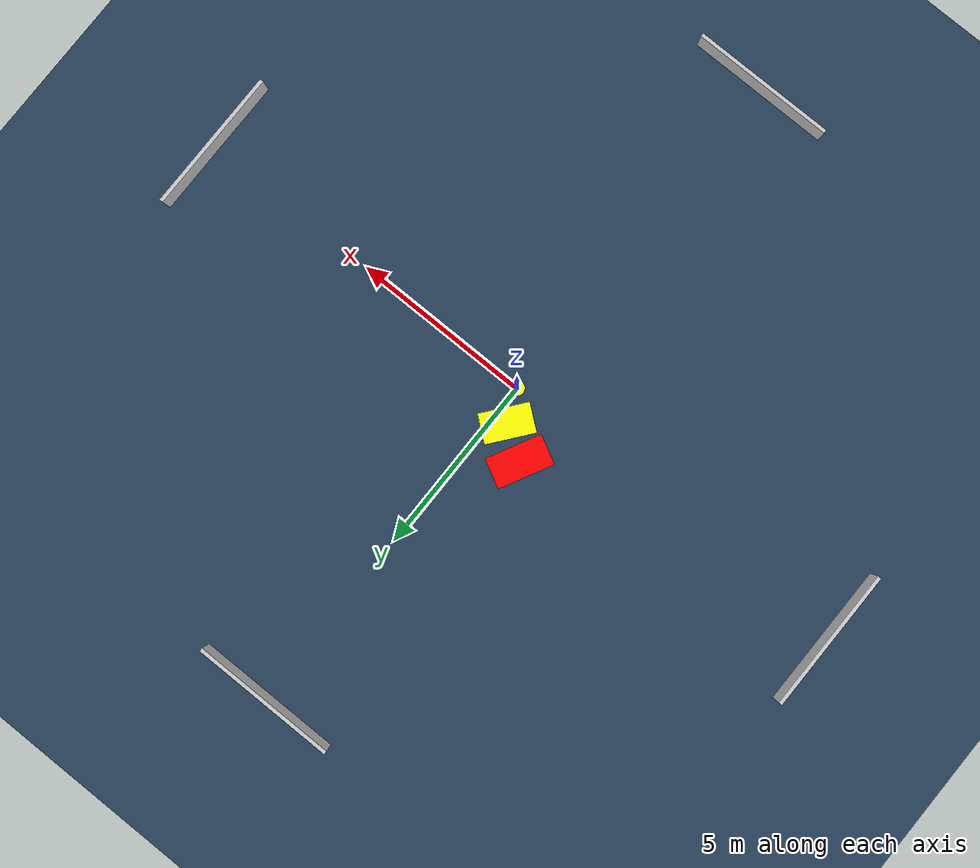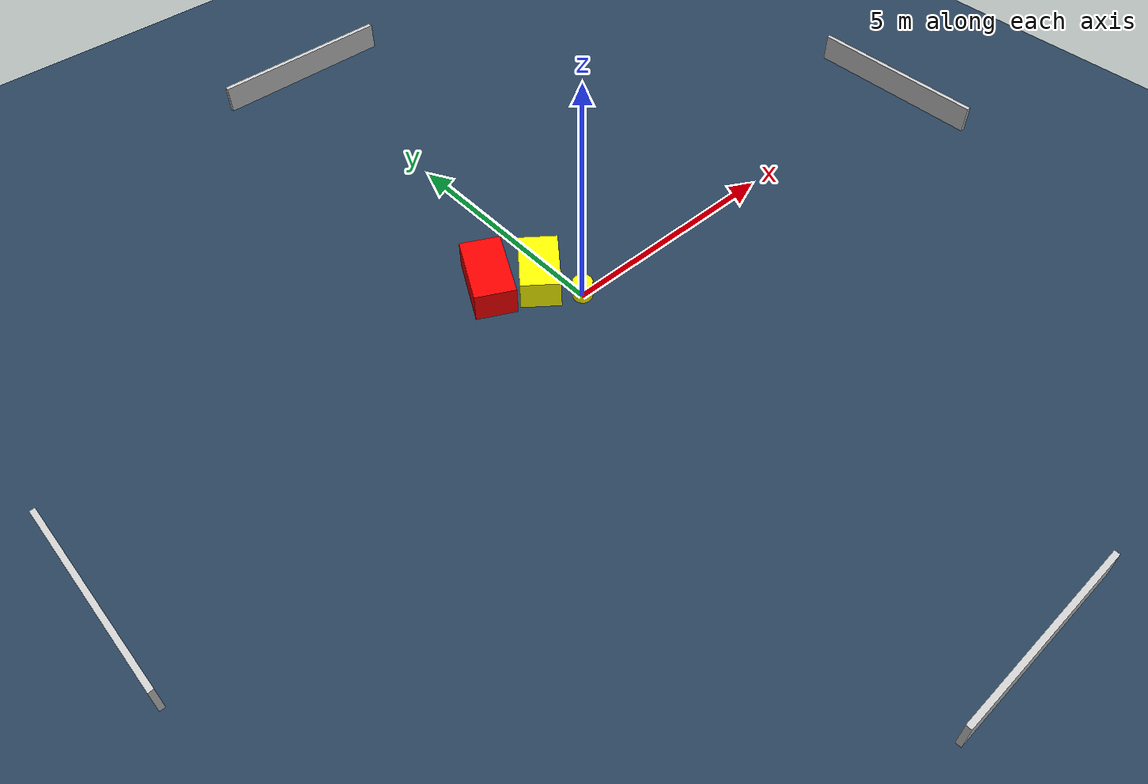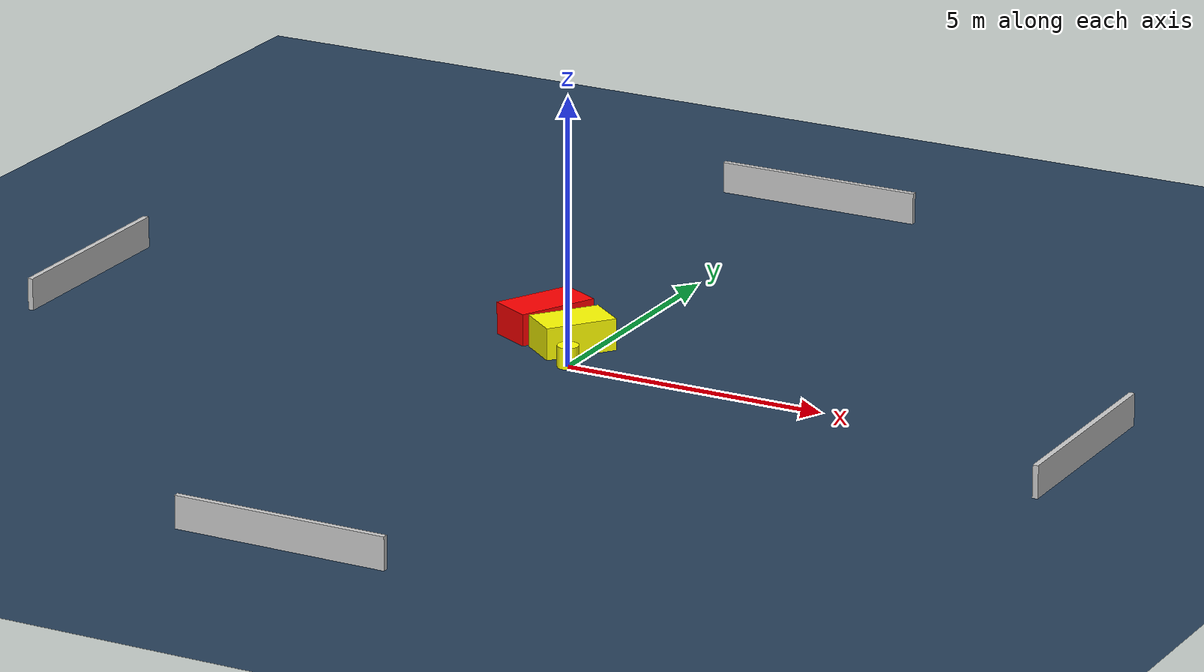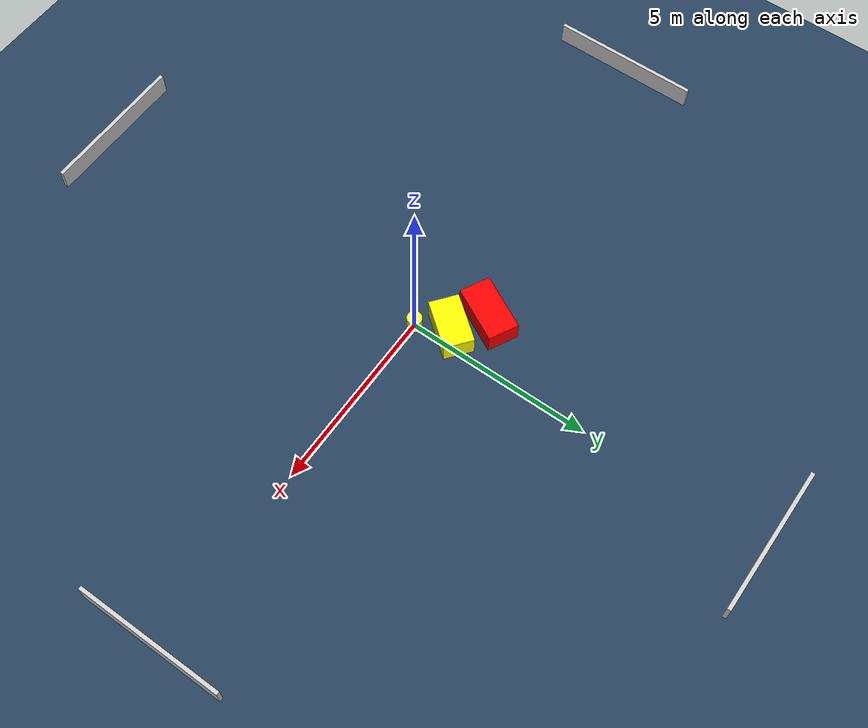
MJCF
<?xml version="1.0" ?>
<mujoco model="generated_environment">
  <option timestep="0.01" integrator="RK4" cone="elliptic"/>
  <default>
    <geom density="1"/>
  </default>
  <asset>
    <texture builtin="gradient" height="3072" name="skybox" rgb1="0.3 0.5 0.7" rgb2="0 0 0" type="skybox" width="512"/>
    <texture builtin="checker" height="300" name="groundplane" rgb1="0.2 0.3 0.4" rgb2="0.1 0.2 0.3" type="2d" width="300"/>
    <material name="groundplane" reflectance="0.2" texrepeat="5 5" texture="groundplane"/>
  </asset>
  <worldbody>
    <light dir="0 0 -1" directional="true" pos="0 0 1.5"/>
    <geom condim="3" friction="0.5 0.005 0.001" material="groundplane" name="floor" pos="0 0 0" size="0 0 0.05" type="plane"/>
    <body name="walls">
      <geom name="wall_1" condim="4" pos="-10.0 0.0 0.3" rgba="0.800000011920929 0.800000011920929 0.800000011920929 1.0" size="0.05 2.0 0.3" type="box"/>
      <geom name="wall_2" condim="4" pos="10.0 0.0 0.3" rgba="0.800000011920929 0.800000011920929 0.800000011920929 1.0" size="0.05 2.0 0.3" type="box"/>
      <geom name="wall_3" condim="4" pos="0.0 -10.0 0.3" rgba="0.800000011920929 0.800000011920929 0.800000011920929 1.0" size="2.0 0.05 0.3" type="box"/>
      <geom name="wall_4" condim="4" pos="0.0 10.0 0.3" rgba="0.800000011920929 0.800000011920929 0.800000011920929 1.0" size="2.0 0.05 0.3" type="box"/>
    </body>
    <body name="robot">
      <joint name="joint_x" type="slide" pos="0 0 0" axis="1 0 0"/>
      <joint name="joint_y" type="slide" pos="0 0 0" axis="0 1 0"/>
      <geom name="robot" type="cylinder" pos="0.0 0.0 0.2" size="0.2 0.2 0.0" mass="5.0" friction="1.0 0.005 0.0001" condim="4" rgba="1.0 1.0 0.0 1.0"/>
    </body>
    <body name="obstacle_1_movable">
      <geom name="obstacle_1_movable" condim="4" pos="-0.36987125975529145 0.8540662936660334 0.3" euler="0 0 231.8018000380812" friction="0.0 0.005 0.001" rgba="1.0 1.0 0.0 1.0" size="0.674244612227524 0.400393328689206 0.3" type="box" mass="0.1"/>
      <joint type="free"/>
    </body>
    <body name="obstacle_2_static">
      <geom name="obstacle_2_static" condim="4" pos="-1.2197941164713304 1.4023159625865957 0.3" euler="0 0 62.6181694095539" friction="0.0 0.005 0.001" rgba="1.0 0.0 0.0 1.0" size="0.7700399776087898 0.41539233879622817 0.3" type="box"/>
    </body>
  </worldbody>
  <actuator>
    <motor name="actuator_x" joint="joint_x" gear="1" ctrlrange="-1 1"/>
    <motor name="actuator_y" joint="joint_y" gear="1" ctrlrange="-1 1"/>
  </actuator>
</mujoco>
